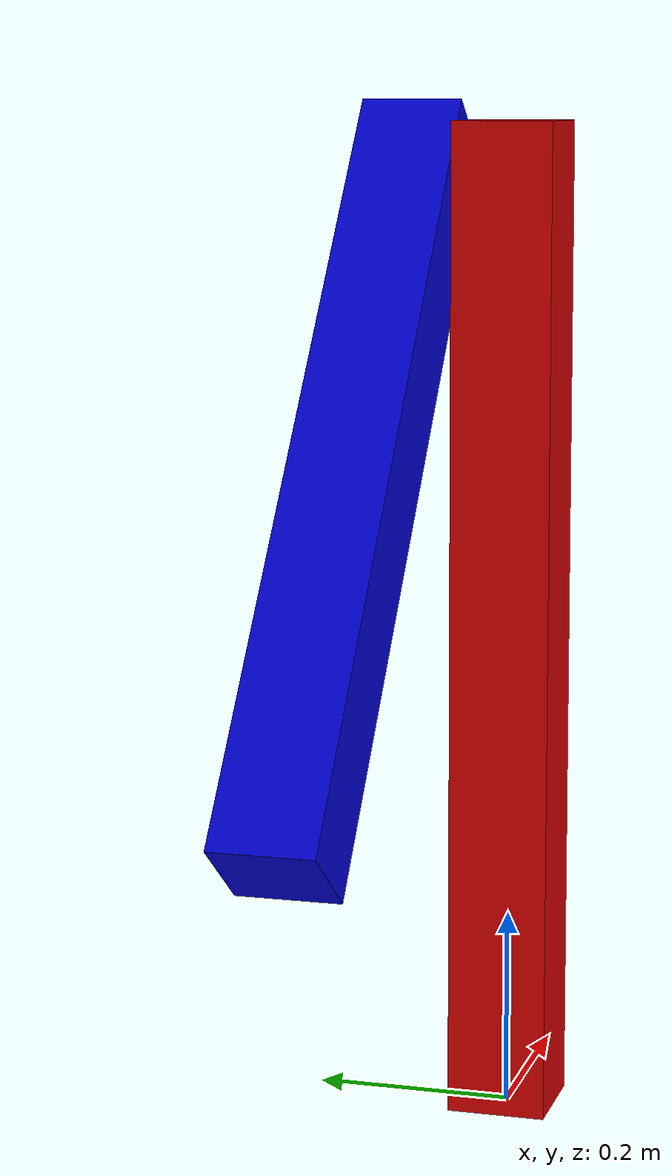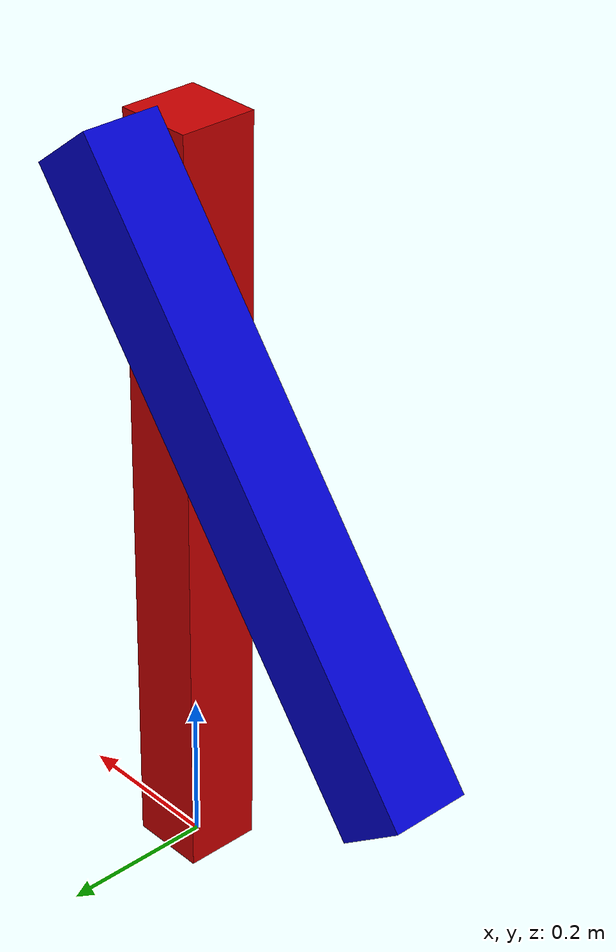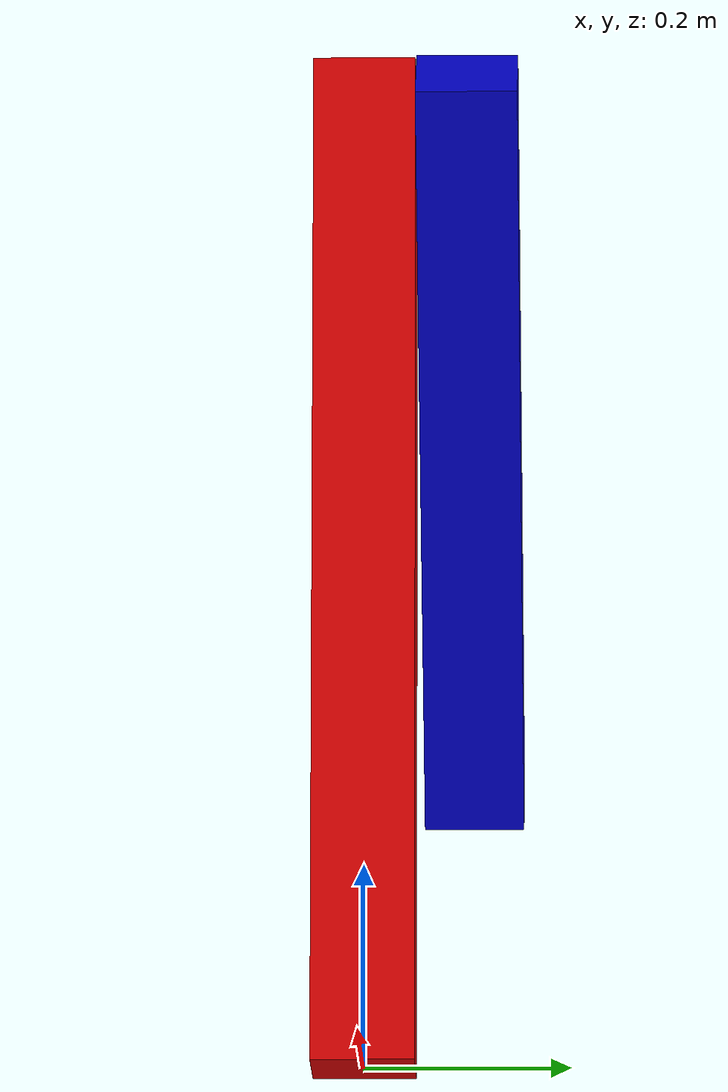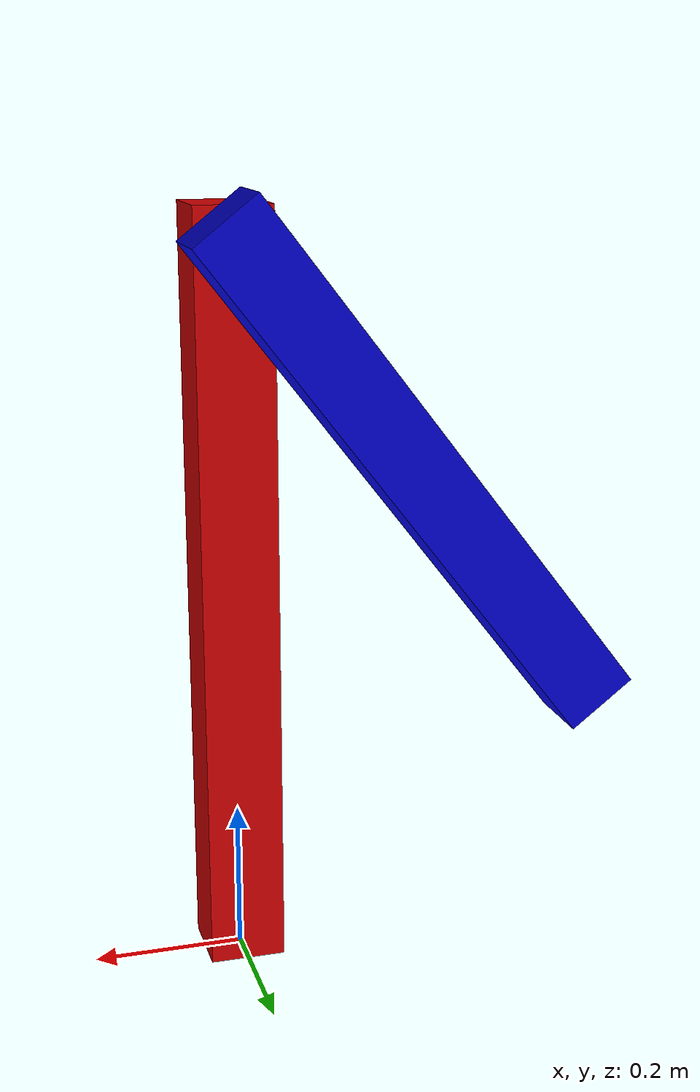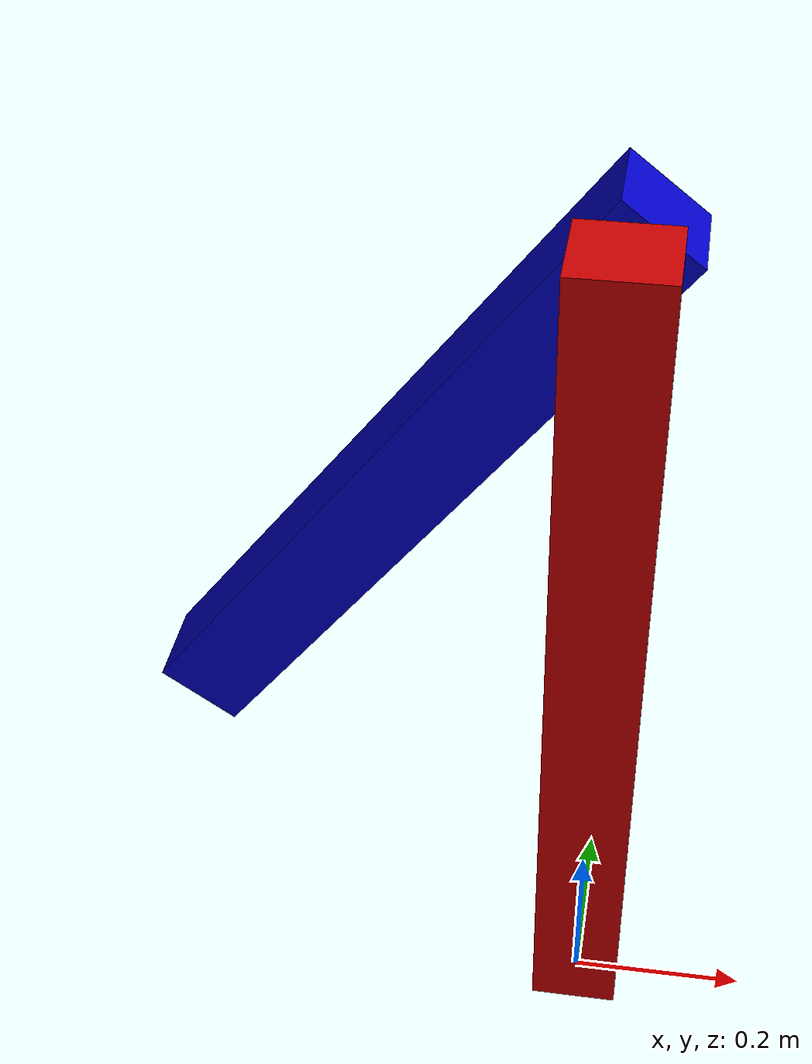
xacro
<?xml version="1.0"?>
<robot name="simple-robot" xmlns:xacro="http://ros.org/wiki/xacro">

  <material name="white">
    <color rgba="1 1 1 0.9"/>
  </material>

  <material name="blue">
    <color rgba="0 0 0.8 0.9"/>
  </material>

  <material name="red">
    <color rgba="0.8 0 0 0.9"/>
  </material>

  <xacro:macro name="inertial_for_box" params="width height depth mass">
    <inertial>
      <mass value="${mass}" />
      <inertia ixx="${(mass/12.0)*(height*height + depth*depth)}" ixy="0.0" ixz="0.0"
        iyy="${(mass/12.0)*(width*width + height*height)}" iyz="0.0"
        izz="${(mass/12.0)*(width*width + depth*depth)}" />
    </inertial>
  </xacro:macro>

  <link name="base_link">
    <collision>
      <geometry>
        <box size="1 1 0.0001"/>
      </geometry>
    </collision>
  </link>

  <link name="robot_base">
    <visual>
      <geometry>
        <box size="0.1 0.1 1.0"/>
      </geometry>
      <material name="red" />
    </visual>
    <collision>
      <geometry>
        <box size="0.1 0.1 1.0"/>
      </geometry>
    </collision>
    <xacro:inertial_for_box width="0.6" height="0.1" depth="0.2" mass="10" />
  </link>

  <link name="robot_arm">
    <visual>
      <geometry>
        <box size="0.1 0.1 0.8"/>
      </geometry>
      <origin rpy="0 0 0" xyz="0 0 -0.35"/>
      <material name="blue" />
    </visual>
    <collision>
      <geometry>
        <box size="0.1 0.1 0.8"/>
      </geometry>
      <origin rpy="0 0 0" xyz="0 0 -0.35"/>
    </collision>
    <xacro:inertial_for_box width="0.6" height="0.1" depth="0.2" mass="200" />
  </link>

  <joint name="robot_base_to_base_link" type="fixed">
    <parent link="base_link"/>
    <child link="robot_base"/>
    <origin rpy="0 0 0" xyz="0 0 0.5"/>
  </joint>

  <joint name="the_joint" type="revolute">
    <parent link="robot_base"/>
    <child link="robot_arm"/>
    <origin rpy="0 0.66 0" xyz="0 0.1 0.45"/>
    <axis rpy="0 0 0" xyz="0 1 0"/>
    <limit effort="10.0" lower="-3" upper="3" velocity="0.5"/>
    <dynamics damping="0.001" friction="0.0001"/>
  </joint>

</robot>
